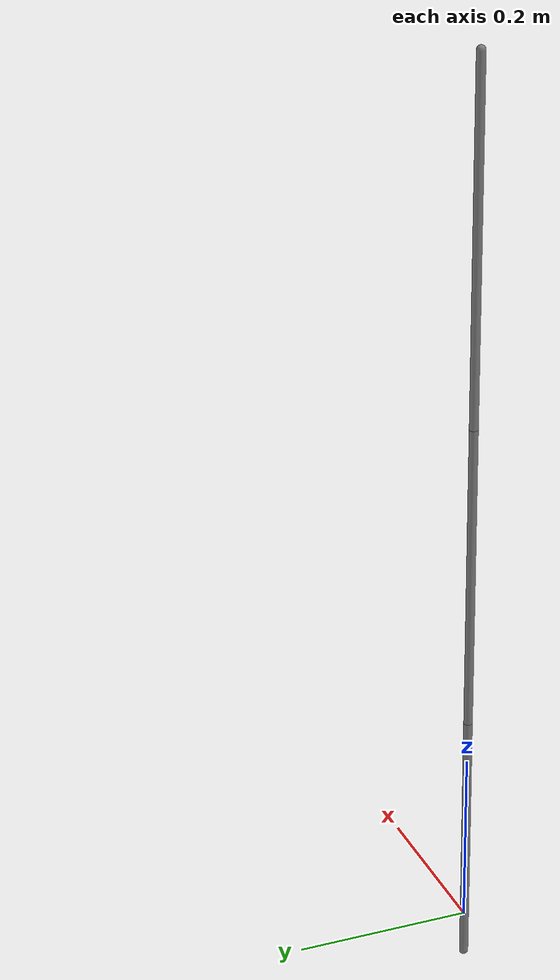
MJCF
<mujoco model="acrobot3_match_ode">
  <!-- We will set inertials explicitly; geoms are massless visuals -->
  <compiler angle="radian" />
  <option gravity="0 0 -9.81" timestep="0.001" integrator="RK4"/>

  <default>
    <joint type="hinge" axis="0 1 0" limited="false" />
    <!-- Visual-only rods; no mass, no contact/friction -->
    <geom type="capsule" />
  </default>

  <!-- Choose the exact masses/lengths you used in your 2D model -->
  <!-- Example: m0=m1=m2=1.0 kg; L0=0.40, L1=0.35, L2=0.30 m; tiny radius r=0.005 m -->

  <worldbody>
    <body name="base" pos="0 0 1.0">
      <!-- Link 0 -->
      <body name="link0" pos="0 0 0">
        <joint name="j0"/>
        <!-- inertial at COM: (0,0,-L0/2); Ixx=Iyy=(1/12)mL^2, Izz≈(1/2)mr^2 -->
        <inertial pos="0 0 -0.20" mass="1.0" diaginertia="0.013333 0.013333 0.0000125"/>
        <geom fromto="0 0 0   0 0 -0.40" size="0.005"/>

        <!-- Link 1 attaches at tip of link0 -->
        <body name="link1" pos="0 0 -0.40">
          <joint name="j1"/>
          <inertial pos="0 0 -0.175" mass="1.0" diaginertia="0.0102083 0.0102083 0.0000125"/>
          <geom fromto="0 0 0   0 0 -0.35" size="0.005"/>

          <!-- Link 2 attaches at tip of link1 -->
          <body name="link2" pos="0 0 -0.35">
            <joint name="j2"/>
            <inertial pos="0 0 -0.15" mass="1.0" diaginertia="0.0075 0.0075 0.0000125"/>
            <geom fromto="0 0 0   0 0 -0.30" size="0.005"/>
          </body>
        </body>
      </body>
    </body>
  </worldbody>

  <!-- No actuators: pure passive swing (like your ODE unless you had inputs) -->
  <actuator/>
</mujoco>
